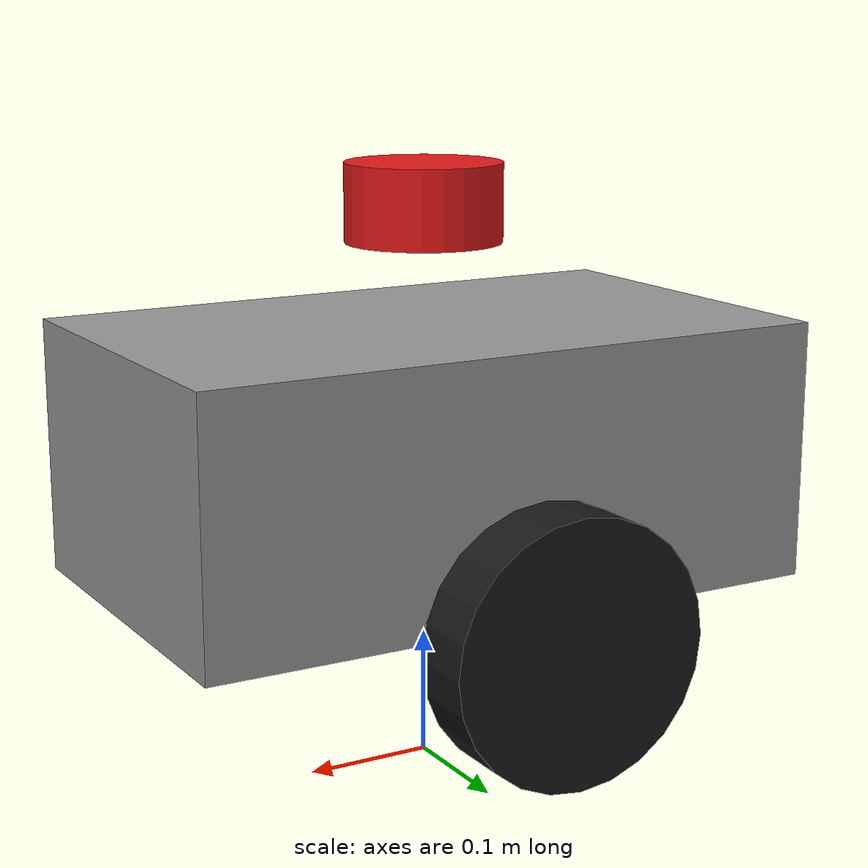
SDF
<?xml version="1.0"?>
<sdf version="1.9">
  <model name="cuboid_robot">
    <pose>0 0 0.25 0 0 0</pose>

    <link name="base_link">
      <inertial>
        <mass>5.0</mass>
        <inertia>
          <ixx>0.1</ixx>
          <iyy>0.1</iyy>
          <izz>0.1</izz>
          <ixy>0.0</ixy>
          <ixz>0.0</ixz>
          <iyz>0.0</iyz>
        </inertia>
      </inertial>
      <collision name="base_collision">
        <geometry>
          <box>
            <size>0.5 0.3 0.2</size>
          </box>
        </geometry>
      </collision>
      <visual name="base_visual">
        <geometry>
          <box>
            <size>0.5 0.3 0.2</size>
          </box>
        </geometry>
        <material>
          <ambient>0.6 0.6 0.6 1.0</ambient>
          <diffuse>0.6 0.6 0.6 1.0</diffuse>
        </material>
      </visual>
    </link>

    <link name="left_wheel">
      <pose>0 0.2 -0.1 0 0 0</pose>
      <inertial>
        <mass>0.5</mass>
        <inertia>
          <ixx>0.002</ixx>
          <iyy>0.001</iyy>
          <izz>0.002</izz>
          <ixy>0.0</ixy>
          <ixz>0.0</ixz>
          <iyz>0.0</iyz>
        </inertia>
      </inertial>
      <collision name="left_wheel_collision">
        <pose>0 0 0 1.5708 0 0</pose>
        <geometry>
          <cylinder>
            <radius>0.1</radius>
            <length>0.05</length>
          </cylinder>
        </geometry>
      </collision>
      <visual name="left_wheel_visual">
        <pose>0 0 0 1.5708 0 0</pose>
        <geometry>
          <cylinder>
            <radius>0.1</radius>
            <length>0.05</length>
          </cylinder>
        </geometry>
        <material>
          <ambient>0.1 0.1 0.1 1.0</ambient>
          <diffuse>0.1 0.1 0.1 1.0</diffuse>
        </material>
      </visual>
    </link>

    <link name="right_wheel">
      <pose>0 -0.2 -0.1 0 0 0</pose>
      <inertial>
        <mass>0.5</mass>
        <inertia>
          <ixx>0.002</ixx>
          <iyy>0.001</iyy>
          <izz>0.002</izz>
          <ixy>0.0</ixy>
          <ixz>0.0</ixz>
          <iyz>0.0</iyz>
        </inertia>
      </inertial>
      <collision name="right_wheel_collision">
        <pose>0 0 0 1.5708 0 0</pose>
        <geometry>
          <cylinder>
            <radius>0.1</radius>
            <length>0.05</length>
          </cylinder>
        </geometry>
      </collision>
      <visual name="right_wheel_visual">
        <pose>0 0 0 1.5708 0 0</pose>
        <geometry>
          <cylinder>
            <radius>0.1</radius>
            <length>0.05</length>
          </cylinder>
        </geometry>
        <material>
          <ambient>0.1 0.1 0.1 1.0</ambient>
          <diffuse>0.1 0.1 0.1 1.0</diffuse>
        </material>
      </visual>
    </link>

    <link name="lidar_link">
      <pose>0 0 0.16 0 0 0</pose>
      <inertial>
        <mass>0.1</mass>
        <inertia>
          <ixx>0.0002</ixx>
          <iyy>0.0002</iyy>
          <izz>0.0002</izz>
          <ixy>0.0</ixy>
          <ixz>0.0</ixz>
          <iyz>0.0</iyz>
        </inertia>
      </inertial>
      <collision name="lidar_collision">
        <pose>0 0 0.03 0 0 0</pose>
        <geometry>
          <cylinder>
            <radius>0.06</radius>
            <length>0.06</length>
          </cylinder>
        </geometry>
      </collision>
      <visual name="lidar_visual">
        <pose>0 0 0.03 0 0 0</pose>
        <geometry>
          <cylinder>
            <radius>0.06</radius>
            <length>0.06</length>
          </cylinder>
        </geometry>
        <material>
          <ambient>0.9 0.1 0.1 1.0</ambient>
          <diffuse>0.9 0.1 0.1 1.0</diffuse>
        </material>
      </visual>

      <sensor name="lidar" type="gpu_lidar">
        <pose>0 0 0 0 0 0</pose>
        <topic>/scan</topic>
        <frame_id>lidar_link</frame_id>
        <update_rate>10</update_rate>
        <always_on>1</always_on>
        <visualize>true</visualize>
        <ray>
          <scan>
            <horizontal>
              <samples>360</samples>
              <resolution>1</resolution>
              <min_angle>-3.14159</min_angle>
              <max_angle>3.14159</max_angle>
            </horizontal>
          </scan>
          <range>
            <min>0.12</min>
            <max>12.0</max>
            <resolution>0.01</resolution>
          </range>
        </ray>
      </sensor>
    </link>

    <joint name="left_wheel_joint" type="revolute">
      <parent>base_link</parent>
      <child>left_wheel</child>
      <axis>
        <xyz>0 1 0</xyz>
        <limit>
          <lower>-1e16</lower>
          <upper>1e16</upper>
        </limit>
      </axis>
    </joint>

    <joint name="right_wheel_joint" type="revolute">
      <parent>base_link</parent>
      <child>right_wheel</child>
      <axis>
        <xyz>0 1 0</xyz>
        <limit>
          <lower>-1e16</lower>
          <upper>1e16</upper>
        </limit>
      </axis>
    </joint>

    <joint name="lidar_joint" type="fixed">
      <parent>base_link</parent>
      <child>lidar_link</child>
    </joint>

    <plugin filename="gz-sim-diff-drive-system" name="gz::sim::systems::DiffDrive">
      <left_joint>left_wheel_joint</left_joint>
      <right_joint>right_wheel_joint</right_joint>
      <wheel_separation>0.4</wheel_separation>
      <wheel_radius>0.1</wheel_radius>
      <min_velocity>-1.5</min_velocity>
      <max_velocity>1.5</max_velocity>
      <min_acceleration>-2.0</min_acceleration>
      <max_acceleration>2.0</max_acceleration>
      <topic>/cmd_vel</topic>
      <odom_topic>/odom</odom_topic>
      <tf_topic>/model/cuboid_robot/tf</tf_topic>
      <odom_publish_frequency>30</odom_publish_frequency>
      <frame_id>odom</frame_id>
      <child_frame_id>base_link</child_frame_id>
    </plugin>
  </model>
</sdf>
